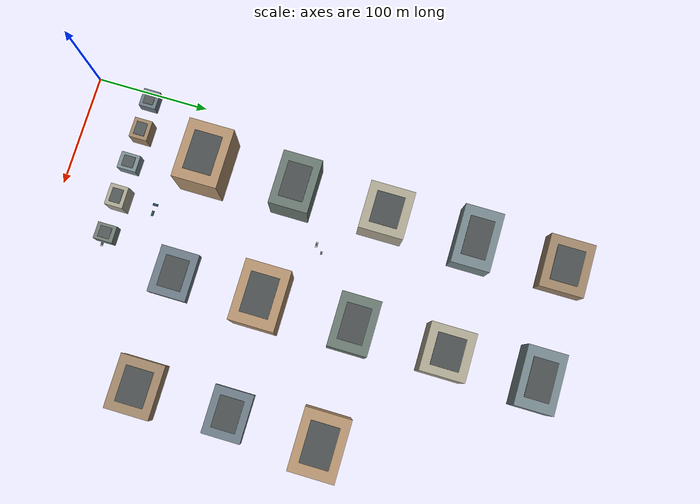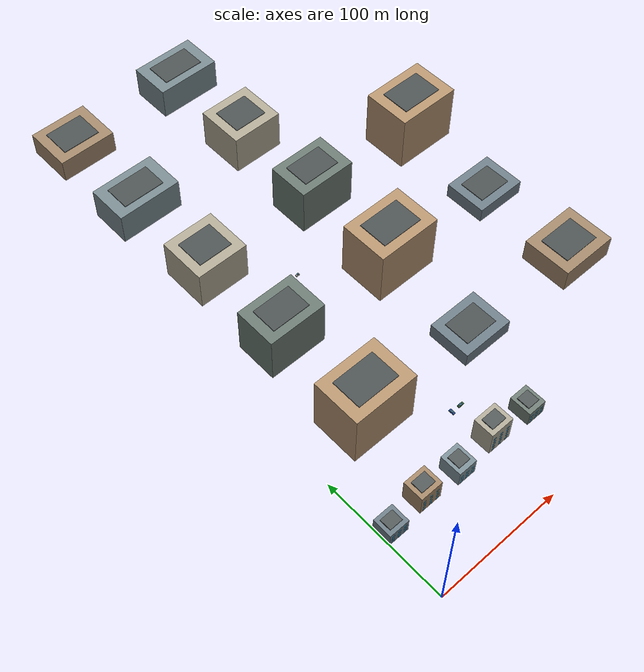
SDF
<sdf version="1.9">
 <world name="smart_city">
  <model name="city_block_01">
   <static>true</static>
   <pose>8 52 0 0 0 0</pose>
   <link name="building">
    <visual name="facade">
     <pose>0 0 6.0 0 0 0</pose>
     <geometry><box><size>16 15 12</size></box></geometry>
     <material><ambient>0.42 0.48 0.52 1</ambient><diffuse>0.42 0.48 0.52 1</diffuse></material>
    </visual>
    <visual name="window_0_-512">
     <pose>-5.12 -7.525 2.00 0 0 0</pose>
     <geometry><box><size>2.2 0.08 1.7</size></box></geometry>
     <material>
      <ambient>0.22 0.60 0.76 1</ambient>
      <diffuse>0.22 0.60 0.76 1</diffuse>
      <specular>0.35 0.35 0.35 1</specular>
     </material>
    </visual>
    <visual name="window_0_0">
     <pose>0.00 -7.525 2.00 0 0 0</pose>
     <geometry><box><size>2.2 0.08 1.7</size></box></geometry>
     <material>
      <ambient>0.22 0.60 0.76 1</ambient>
      <diffuse>0.22 0.60 0.76 1</diffuse>
      <specular>0.35 0.35 0.35 1</specular>
     </material>
    </visual>
    <visual name="window_0_512">
     <pose>5.12 -7.525 2.00 0 0 0</pose>
     <geometry><box><size>2.2 0.08 1.7</size></box></geometry>
     <material>
      <ambient>0.22 0.60 0.76 1</ambient>
      <diffuse>0.22 0.60 0.76 1</diffuse>
      <specular>0.35 0.35 0.35 1</specular>
     </material>
    </visual>
    <visual name="window_1_-512">
     <pose>-5.12 -7.525 5.20 0 0 0</pose>
     <geometry><box><size>2.2 0.08 1.7</size></box></geometry>
     <material>
      <ambient>0.22 0.60 0.76 1</ambient>
      <diffuse>0.22 0.60 0.76 1</diffuse>
      <specular>0.35 0.35 0.35 1</specular>
     </material>
    </visual>
    <visual name="window_1_0">
     <pose>0.00 -7.525 5.20 0 0 0</pose>
     <geometry><box><size>2.2 0.08 1.7</size></box></geometry>
     <material>
      <ambient>0.22 0.60 0.76 1</ambient>
      <diffuse>0.22 0.60 0.76 1</diffuse>
      <specular>0.35 0.35 0.35 1</specular>
     </material>
    </visual>
    <visual name="window_1_512">
     <pose>5.12 -7.525 5.20 0 0 0</pose>
     <geometry><box><size>2.2 0.08 1.7</size></box></geometry>
     <material>
      <ambient>0.22 0.60 0.76 1</ambient>
      <diffuse>0.22 0.60 0.76 1</diffuse>
      <specular>0.35 0.35 0.35 1</specular>
     </material>
    </visual>
    <visual name="window_2_-512">
     <pose>-5.12 -7.525 8.40 0 0 0</pose>
     <geometry><box><size>2.2 0.08 1.7</size></box></geometry>
     <material>
      <ambient>0.22 0.60 0.76 1</ambient>
      <diffuse>0.22 0.60 0.76 1</diffuse>
      <specular>0.35 0.35 0.35 1</specular>
     </material>
    </visual>
    <visual name="window_2_0">
     <pose>0.00 -7.525 8.40 0 0 0</pose>
     <geometry><box><size>2.2 0.08 1.7</size></box></geometry>
     <material>
      <ambient>0.22 0.60 0.76 1</ambient>
      <diffuse>0.22 0.60 0.76 1</diffuse>
      <specular>0.35 0.35 0.35 1</specular>
     </material>
    </visual>
    <visual name="window_2_512">
     <pose>5.12 -7.525 8.40 0 0 0</pose>
     <geometry><box><size>2.2 0.08 1.7</size></box></geometry>
     <material>
      <ambient>0.22 0.60 0.76 1</ambient>
      <diffuse>0.22 0.60 0.76 1</diffuse>
      <specular>0.35 0.35 0.35 1</specular>
     </material>
    </visual>
    <visual name="roof">
     <pose>0 0 12.4 0 0 0</pose>
     <geometry><box><size>10.4 9.0 0.8</size></box></geometry>
     <material><ambient>0.32 0.34 0.34 1</ambient><diffuse>0.32 0.34 0.34 1</diffuse></material>
    </visual>
   </link>
  </model>
  <model name="city_block_02">
   <static>true</static>
   <pose>38 55 0 0 0 0</pose>
   <link name="building">
    <visual name="facade">
     <pose>0 0 9.0 0 0 0</pose>
     <geometry><box><size>18 16 18</size></box></geometry>
     <material><ambient>0.63 0.52 0.40 1</ambient><diffuse>0.63 0.52 0.40 1</diffuse></material>
    </visual>
    <visual name="window_0_-576">
     <pose>-5.76 -8.025 2.00 0 0 0</pose>
     <geometry><box><size>2.2 0.08 1.7</size></box></geometry>
     <material>
      <ambient>0.25 0.62 0.78 1</ambient>
      <diffuse>0.25 0.62 0.78 1</diffuse>
      <specular>0.35 0.35 0.35 1</specular>
     </material>
    </visual>
    <visual name="window_0_0">
     <pose>0.00 -8.025 2.00 0 0 0</pose>
     <geometry><box><size>2.2 0.08 1.7</size></box></geometry>
     <material>
      <ambient>0.25 0.62 0.78 1</ambient>
      <diffuse>0.25 0.62 0.78 1</diffuse>
      <specular>0.35 0.35 0.35 1</specular>
     </material>
    </visual>
    <visual name="window_0_576">
     <pose>5.76 -8.025 2.00 0 0 0</pose>
     <geometry><box><size>2.2 0.08 1.7</size></box></geometry>
     <material>
      <ambient>0.25 0.62 0.78 1</ambient>
      <diffuse>0.25 0.62 0.78 1</diffuse>
      <specular>0.35 0.35 0.35 1</specular>
     </material>
    </visual>
    <visual name="window_1_-576">
     <pose>-5.76 -8.025 5.20 0 0 0</pose>
     <geometry><box><size>2.2 0.08 1.7</size></box></geometry>
     <material>
      <ambient>0.25 0.62 0.78 1</ambient>
      <diffuse>0.25 0.62 0.78 1</diffuse>
      <specular>0.35 0.35 0.35 1</specular>
     </material>
    </visual>
    <visual name="window_1_0">
     <pose>0.00 -8.025 5.20 0 0 0</pose>
     <geometry><box><size>2.2 0.08 1.7</size></box></geometry>
     <material>
      <ambient>0.25 0.62 0.78 1</ambient>
      <diffuse>0.25 0.62 0.78 1</diffuse>
      <specular>0.35 0.35 0.35 1</specular>
     </material>
    </visual>
    <visual name="window_1_576">
     <pose>5.76 -8.025 5.20 0 0 0</pose>
     <geometry><box><size>2.2 0.08 1.7</size></box></geometry>
     <material>
      <ambient>0.25 0.62 0.78 1</ambient>
      <diffuse>0.25 0.62 0.78 1</diffuse>
      <specular>0.35 0.35 0.35 1</specular>
     </material>
    </visual>
    <visual name="window_2_-576">
     <pose>-5.76 -8.025 8.40 0 0 0</pose>
     <geometry><box><size>2.2 0.08 1.7</size></box></geometry>
     <material>
      <ambient>0.25 0.62 0.78 1</ambient>
      <diffuse>0.25 0.62 0.78 1</diffuse>
      <specular>0.35 0.35 0.35 1</specular>
     </material>
    </visual>
    <visual name="window_2_0">
     <pose>0.00 -8.025 8.40 0 0 0</pose>
     <geometry><box><size>2.2 0.08 1.7</size></box></geometry>
     <material>
      <ambient>0.25 0.62 0.78 1</ambient>
      <diffuse>0.25 0.62 0.78 1</diffuse>
      <specular>0.35 0.35 0.35 1</specular>
     </material>
    </visual>
    <visual name="window_2_576">
     <pose>5.76 -8.025 8.40 0 0 0</pose>
     <geometry><box><size>2.2 0.08 1.7</size></box></geometry>
     <material>
      <ambient>0.25 0.62 0.78 1</ambient>
      <diffuse>0.25 0.62 0.78 1</diffuse>
      <specular>0.35 0.35 0.35 1</specular>
     </material>
    </visual>
    <visual name="window_3_-576">
     <pose>-5.76 -8.025 11.60 0 0 0</pose>
     <geometry><box><size>2.2 0.08 1.7</size></box></geometry>
     <material>
      <ambient>0.25 0.62 0.78 1</ambient>
      <diffuse>0.25 0.62 0.78 1</diffuse>
      <specular>0.35 0.35 0.35 1</specular>
     </material>
    </visual>
    <visual name="window_3_0">
     <pose>0.00 -8.025 11.60 0 0 0</pose>
     <geometry><box><size>2.2 0.08 1.7</size></box></geometry>
     <material>
      <ambient>0.25 0.62 0.78 1</ambient>
      <diffuse>0.25 0.62 0.78 1</diffuse>
      <specular>0.35 0.35 0.35 1</specular>
     </material>
    </visual>
    <visual name="window_3_576">
     <pose>5.76 -8.025 11.60 0 0 0</pose>
     <geometry><box><size>2.2 0.08 1.7</size></box></geometry>
     <material>
      <ambient>0.25 0.62 0.78 1</ambient>
      <diffuse>0.25 0.62 0.78 1</diffuse>
      <specular>0.35 0.35 0.35 1</specular>
     </material>
    </visual>
    <visual name="roof">
     <pose>0 0 18.4 0 0 0</pose>
     <geometry><box><size>11.7 9.6 0.8</size></box></geometry>
     <material><ambient>0.32 0.34 0.34 1</ambient><diffuse>0.32 0.34 0.34 1</diffuse></material>
    </visual>
   </link>
  </model>
  <model name="city_block_03">
   <static>true</static>
   <pose>68 53 0 0 0 0</pose>
   <link name="building">
    <visual name="facade">
     <pose>0 0 7.0 0 0 0</pose>
     <geometry><box><size>15 17 14</size></box></geometry>
     <material><ambient>0.48 0.55 0.58 1</ambient><diffuse>0.48 0.55 0.58 1</diffuse></material>
    </visual>
    <visual name="window_0_-480">
     <pose>-4.80 -8.525 2.00 0 0 0</pose>
     <geometry><box><size>2.2 0.08 1.7</size></box></geometry>
     <material>
      <ambient>0.30 0.68 0.82 1</ambient>
      <diffuse>0.30 0.68 0.82 1</diffuse>
      <specular>0.35 0.35 0.35 1</specular>
     </material>
    </visual>
    <visual name="window_0_0">
     <pose>0.00 -8.525 2.00 0 0 0</pose>
     <geometry><box><size>2.2 0.08 1.7</size></box></geometry>
     <material>
      <ambient>0.30 0.68 0.82 1</ambient>
      <diffuse>0.30 0.68 0.82 1</diffuse>
      <specular>0.35 0.35 0.35 1</specular>
     </material>
    </visual>
    <visual name="window_0_480">
     <pose>4.80 -8.525 2.00 0 0 0</pose>
     <geometry><box><size>2.2 0.08 1.7</size></box></geometry>
     <material>
      <ambient>0.30 0.68 0.82 1</ambient>
      <diffuse>0.30 0.68 0.82 1</diffuse>
      <specular>0.35 0.35 0.35 1</specular>
     </material>
    </visual>
    <visual name="window_1_-480">
     <pose>-4.80 -8.525 5.20 0 0 0</pose>
     <geometry><box><size>2.2 0.08 1.7</size></box></geometry>
     <material>
      <ambient>0.30 0.68 0.82 1</ambient>
      <diffuse>0.30 0.68 0.82 1</diffuse>
      <specular>0.35 0.35 0.35 1</specular>
     </material>
    </visual>
    <visual name="window_1_0">
     <pose>0.00 -8.525 5.20 0 0 0</pose>
     <geometry><box><size>2.2 0.08 1.7</size></box></geometry>
     <material>
      <ambient>0.30 0.68 0.82 1</ambient>
      <diffuse>0.30 0.68 0.82 1</diffuse>
      <specular>0.35 0.35 0.35 1</specular>
     </material>
    </visual>
    <visual name="window_1_480">
     <pose>4.80 -8.525 5.20 0 0 0</pose>
     <geometry><box><size>2.2 0.08 1.7</size></box></geometry>
     <material>
      <ambient>0.30 0.68 0.82 1</ambient>
      <diffuse>0.30 0.68 0.82 1</diffuse>
      <specular>0.35 0.35 0.35 1</specular>
     </material>
    </visual>
    <visual name="window_2_-480">
     <pose>-4.80 -8.525 8.40 0 0 0</pose>
     <geometry><box><size>2.2 0.08 1.7</size></box></geometry>
     <material>
      <ambient>0.30 0.68 0.82 1</ambient>
      <diffuse>0.30 0.68 0.82 1</diffuse>
      <specular>0.35 0.35 0.35 1</specular>
     </material>
    </visual>
    <visual name="window_2_0">
     <pose>0.00 -8.525 8.40 0 0 0</pose>
     <geometry><box><size>2.2 0.08 1.7</size></box></geometry>
     <material>
      <ambient>0.30 0.68 0.82 1</ambient>
      <diffuse>0.30 0.68 0.82 1</diffuse>
      <specular>0.35 0.35 0.35 1</specular>
     </material>
    </visual>
    <visual name="window_2_480">
     <pose>4.80 -8.525 8.40 0 0 0</pose>
     <geometry><box><size>2.2 0.08 1.7</size></box></geometry>
     <material>
      <ambient>0.30 0.68 0.82 1</ambient>
      <diffuse>0.30 0.68 0.82 1</diffuse>
      <specular>0.35 0.35 0.35 1</specular>
     </material>
    </visual>
    <visual name="roof">
     <pose>0 0 14.4 0 0 0</pose>
     <geometry><box><size>9.8 10.2 0.8</size></box></geometry>
     <material><ambient>0.32 0.34 0.34 1</ambient><diffuse>0.32 0.34 0.34 1</diffuse></material>
    </visual>
   </link>
  </model>
  <model name="city_block_04">
   <static>true</static>
   <pose>101 55 0 0 0 0</pose>
   <link name="building">
    <visual name="facade">
     <pose>0 0 11.0 0 0 0</pose>
     <geometry><box><size>19 16 22</size></box></geometry>
     <material><ambient>0.67 0.65 0.58 1</ambient><diffuse>0.67 0.65 0.58 1</diffuse></material>
    </visual>
    <visual name="window_0_-608">
     <pose>-6.08 -8.025 2.00 0 0 0</pose>
     <geometry><box><size>2.2 0.08 1.7</size></box></geometry>
     <material>
      <ambient>0.24 0.55 0.72 1</ambient>
      <diffuse>0.24 0.55 0.72 1</diffuse>
      <specular>0.35 0.35 0.35 1</specular>
     </material>
    </visual>
    <visual name="window_0_0">
     <pose>0.00 -8.025 2.00 0 0 0</pose>
     <geometry><box><size>2.2 0.08 1.7</size></box></geometry>
     <material>
      <ambient>0.24 0.55 0.72 1</ambient>
      <diffuse>0.24 0.55 0.72 1</diffuse>
      <specular>0.35 0.35 0.35 1</specular>
     </material>
    </visual>
    <visual name="window_0_608">
     <pose>6.08 -8.025 2.00 0 0 0</pose>
     <geometry><box><size>2.2 0.08 1.7</size></box></geometry>
     <material>
      <ambient>0.24 0.55 0.72 1</ambient>
      <diffuse>0.24 0.55 0.72 1</diffuse>
      <specular>0.35 0.35 0.35 1</specular>
     </material>
    </visual>
    <visual name="window_1_-608">
     <pose>-6.08 -8.025 5.20 0 0 0</pose>
     <geometry><box><size>2.2 0.08 1.7</size></box></geometry>
     <material>
      <ambient>0.24 0.55 0.72 1</ambient>
      <diffuse>0.24 0.55 0.72 1</diffuse>
      <specular>0.35 0.35 0.35 1</specular>
     </material>
    </visual>
    <visual name="window_1_0">
     <pose>0.00 -8.025 5.20 0 0 0</pose>
     <geometry><box><size>2.2 0.08 1.7</size></box></geometry>
     <material>
      <ambient>0.24 0.55 0.72 1</ambient>
      <diffuse>0.24 0.55 0.72 1</diffuse>
      <specular>0.35 0.35 0.35 1</specular>
     </material>
    </visual>
    <visual name="window_1_608">
     <pose>6.08 -8.025 5.20 0 0 0</pose>
     <geometry><box><size>2.2 0.08 1.7</size></box></geometry>
     <material>
      <ambient>0.24 0.55 0.72 1</ambient>
      <diffuse>0.24 0.55 0.72 1</diffuse>
      <specular>0.35 0.35 0.35 1</specular>
     </material>
    </visual>
    <visual name="window_2_-608">
     <pose>-6.08 -8.025 8.40 0 0 0</pose>
     <geometry><box><size>2.2 0.08 1.7</size></box></geometry>
     <material>
      <ambient>0.24 0.55 0.72 1</ambient>
      <diffuse>0.24 0.55 0.72 1</diffuse>
      <specular>0.35 0.35 0.35 1</specular>
     </material>
    </visual>
    <visual name="window_2_0">
     <pose>0.00 -8.025 8.40 0 0 0</pose>
     <geometry><box><size>2.2 0.08 1.7</size></box></geometry>
     <material>
      <ambient>0.24 0.55 0.72 1</ambient>
      <diffuse>0.24 0.55 0.72 1</diffuse>
      <specular>0.35 0.35 0.35 1</specular>
     </material>
    </visual>
    <visual name="window_2_608">
     <pose>6.08 -8.025 8.40 0 0 0</pose>
     <geometry><box><size>2.2 0.08 1.7</size></box></geometry>
     <material>
      <ambient>0.24 0.55 0.72 1</ambient>
      <diffuse>0.24 0.55 0.72 1</diffuse>
      <specular>0.35 0.35 0.35 1</specular>
     </material>
    </visual>
    <visual name="window_3_-608">
     <pose>-6.08 -8.025 11.60 0 0 0</pose>
     <geometry><box><size>2.2 0.08 1.7</size></box></geometry>
     <material>
      <ambient>0.24 0.55 0.72 1</ambient>
      <diffuse>0.24 0.55 0.72 1</diffuse>
      <specular>0.35 0.35 0.35 1</specular>
     </material>
    </visual>
    <visual name="window_3_0">
     <pose>0.00 -8.025 11.60 0 0 0</pose>
     <geometry><box><size>2.2 0.08 1.7</size></box></geometry>
     <material>
      <ambient>0.24 0.55 0.72 1</ambient>
      <diffuse>0.24 0.55 0.72 1</diffuse>
      <specular>0.35 0.35 0.35 1</specular>
     </material>
    </visual>
    <visual name="window_3_608">
     <pose>6.08 -8.025 11.60 0 0 0</pose>
     <geometry><box><size>2.2 0.08 1.7</size></box></geometry>
     <material>
      <ambient>0.24 0.55 0.72 1</ambient>
      <diffuse>0.24 0.55 0.72 1</diffuse>
      <specular>0.35 0.35 0.35 1</specular>
     </material>
    </visual>
    <visual name="window_4_-608">
     <pose>-6.08 -8.025 14.80 0 0 0</pose>
     <geometry><box><size>2.2 0.08 1.7</size></box></geometry>
     <material>
      <ambient>0.24 0.55 0.72 1</ambient>
      <diffuse>0.24 0.55 0.72 1</diffuse>
      <specular>0.35 0.35 0.35 1</specular>
     </material>
    </visual>
    <visual name="window_4_0">
     <pose>0.00 -8.025 14.80 0 0 0</pose>
     <geometry><box><size>2.2 0.08 1.7</size></box></geometry>
     <material>
      <ambient>0.24 0.55 0.72 1</ambient>
      <diffuse>0.24 0.55 0.72 1</diffuse>
      <specular>0.35 0.35 0.35 1</specular>
     </material>
    </visual>
    <visual name="window_4_608">
     <pose>6.08 -8.025 14.80 0 0 0</pose>
     <geometry><box><size>2.2 0.08 1.7</size></box></geometry>
     <material>
      <ambient>0.24 0.55 0.72 1</ambient>
      <diffuse>0.24 0.55 0.72 1</diffuse>
      <specular>0.35 0.35 0.35 1</specular>
     </material>
    </visual>
    <visual name="roof">
     <pose>0 0 22.4 0 0 0</pose>
     <geometry><box><size>12.3 9.6 0.8</size></box></geometry>
     <material><ambient>0.32 0.34 0.34 1</ambient><diffuse>0.32 0.34 0.34 1</diffuse></material>
    </visual>
   </link>
  </model>
  <model name="city_block_05">
   <static>true</static>
   <pose>133 53 0 0 0 0</pose>
   <link name="building">
    <visual name="facade">
     <pose>0 0 6.5 0 0 0</pose>
     <geometry><box><size>15 17 13</size></box></geometry>
     <material><ambient>0.43 0.48 0.45 1</ambient><diffuse>0.43 0.48 0.45 1</diffuse></material>
    </visual>
    <visual name="window_0_-480">
     <pose>-4.80 -8.525 2.00 0 0 0</pose>
     <geometry><box><size>2.2 0.08 1.7</size></box></geometry>
     <material>
      <ambient>0.31 0.64 0.78 1</ambient>
      <diffuse>0.31 0.64 0.78 1</diffuse>
      <specular>0.35 0.35 0.35 1</specular>
     </material>
    </visual>
    <visual name="window_0_0">
     <pose>0.00 -8.525 2.00 0 0 0</pose>
     <geometry><box><size>2.2 0.08 1.7</size></box></geometry>
     <material>
      <ambient>0.31 0.64 0.78 1</ambient>
      <diffuse>0.31 0.64 0.78 1</diffuse>
      <specular>0.35 0.35 0.35 1</specular>
     </material>
    </visual>
    <visual name="window_0_480">
     <pose>4.80 -8.525 2.00 0 0 0</pose>
     <geometry><box><size>2.2 0.08 1.7</size></box></geometry>
     <material>
      <ambient>0.31 0.64 0.78 1</ambient>
      <diffuse>0.31 0.64 0.78 1</diffuse>
      <specular>0.35 0.35 0.35 1</specular>
     </material>
    </visual>
    <visual name="window_1_-480">
     <pose>-4.80 -8.525 5.20 0 0 0</pose>
     <geometry><box><size>2.2 0.08 1.7</size></box></geometry>
     <material>
      <ambient>0.31 0.64 0.78 1</ambient>
      <diffuse>0.31 0.64 0.78 1</diffuse>
      <specular>0.35 0.35 0.35 1</specular>
     </material>
    </visual>
    <visual name="window_1_0">
     <pose>0.00 -8.525 5.20 0 0 0</pose>
     <geometry><box><size>2.2 0.08 1.7</size></box></geometry>
     <material>
      <ambient>0.31 0.64 0.78 1</ambient>
      <diffuse>0.31 0.64 0.78 1</diffuse>
      <specular>0.35 0.35 0.35 1</specular>
     </material>
    </visual>
    <visual name="window_1_480">
     <pose>4.80 -8.525 5.20 0 0 0</pose>
     <geometry><box><size>2.2 0.08 1.7</size></box></geometry>
     <material>
      <ambient>0.31 0.64 0.78 1</ambient>
      <diffuse>0.31 0.64 0.78 1</diffuse>
      <specular>0.35 0.35 0.35 1</specular>
     </material>
    </visual>
    <visual name="window_2_-480">
     <pose>-4.80 -8.525 8.40 0 0 0</pose>
     <geometry><box><size>2.2 0.08 1.7</size></box></geometry>
     <material>
      <ambient>0.31 0.64 0.78 1</ambient>
      <diffuse>0.31 0.64 0.78 1</diffuse>
      <specular>0.35 0.35 0.35 1</specular>
     </material>
    </visual>
    <visual name="window_2_0">
     <pose>0.00 -8.525 8.40 0 0 0</pose>
     <geometry><box><size>2.2 0.08 1.7</size></box></geometry>
     <material>
      <ambient>0.31 0.64 0.78 1</ambient>
      <diffuse>0.31 0.64 0.78 1</diffuse>
      <specular>0.35 0.35 0.35 1</specular>
     </material>
    </visual>
    <visual name="window_2_480">
     <pose>4.80 -8.525 8.40 0 0 0</pose>
     <geometry><box><size>2.2 0.08 1.7</size></box></geometry>
     <material>
      <ambient>0.31 0.64 0.78 1</ambient>
      <diffuse>0.31 0.64 0.78 1</diffuse>
      <specular>0.35 0.35 0.35 1</specular>
     </material>
    </visual>
    <visual name="roof">
     <pose>0 0 13.4 0 0 0</pose>
     <geometry><box><size>9.8 10.2 0.8</size></box></geometry>
     <material><ambient>0.32 0.34 0.34 1</ambient><diffuse>0.32 0.34 0.34 1</diffuse></material>
    </visual>
   </link>
  </model>
  <model name="chennai_block_059">
   <static>true</static>
   <pose>50 120 0 0 0 0</pose>
   <link name="building">
    <collision name="structure">
     <pose>0 0 23.5 0 0 0</pose>
     <geometry><box><size>52 39 47</size></box></geometry>
    </collision>
    <visual name="facade">
     <pose>0 0 23.5 0 0 0</pose>
     <geometry><box><size>52 39 47</size></box></geometry>
     <material><ambient>0.70 0.57 0.43 1</ambient><diffuse>0.70 0.57 0.43 1</diffuse></material>
    </visual>
    <visual name="roof">
     <pose>0 0 47.3 0 0 0</pose>
     <geometry><box><size>34.3 24.2 0.6</size></box></geometry>
     <material><ambient>0.29 0.31 0.31 1</ambient><diffuse>0.29 0.31 0.31 1</diffuse></material>
    </visual>
   </link>
  </model>
  <model name="chennai_block_060">
   <static>true</static>
   <pose>150 120 0 0 0 0</pose>
   <link name="building">
    <collision name="structure">
     <pose>0 0 6.0 0 0 0</pose>
     <geometry><box><size>42 34 12</size></box></geometry>
    </collision>
    <visual name="facade">
     <pose>0 0 6.0 0 0 0</pose>
     <geometry><box><size>42 34 12</size></box></geometry>
     <material><ambient>0.42 0.48 0.52 1</ambient><diffuse>0.42 0.48 0.52 1</diffuse></material>
    </visual>
    <visual name="roof">
     <pose>0 0 12.3 0 0 0</pose>
     <geometry><box><size>27.7 21.1 0.6</size></box></geometry>
     <material><ambient>0.29 0.31 0.31 1</ambient><diffuse>0.29 0.31 0.31 1</diffuse></material>
    </visual>
   </link>
  </model>
  <model name="chennai_block_061">
   <static>true</static>
   <pose>250 120 0 0 0 0</pose>
   <link name="building">
    <collision name="structure">
     <pose>0 0 9.5 0 0 0</pose>
     <geometry><box><size>47 39 19</size></box></geometry>
    </collision>
    <visual name="facade">
     <pose>0 0 9.5 0 0 0</pose>
     <geometry><box><size>47 39 19</size></box></geometry>
     <material><ambient>0.62 0.52 0.41 1</ambient><diffuse>0.62 0.52 0.41 1</diffuse></material>
    </visual>
    <visual name="roof">
     <pose>0 0 19.3 0 0 0</pose>
     <geometry><box><size>31.0 24.2 0.6</size></box></geometry>
     <material><ambient>0.29 0.31 0.31 1</ambient><diffuse>0.29 0.31 0.31 1</diffuse></material>
    </visual>
   </link>
  </model>
  <model name="chennai_block_070">
   <static>true</static>
   <pose>50 200 0 0 0 0</pose>
   <link name="building">
    <collision name="structure">
     <pose>0 0 20.0 0 0 0</pose>
     <geometry><box><size>47 34 40</size></box></geometry>
    </collision>
    <visual name="facade">
     <pose>0 0 20.0 0 0 0</pose>
     <geometry><box><size>47 34 40</size></box></geometry>
     <material><ambient>0.41 0.47 0.44 1</ambient><diffuse>0.41 0.47 0.44 1</diffuse></material>
    </visual>
    <visual name="roof">
     <pose>0 0 40.3 0 0 0</pose>
     <geometry><box><size>31.0 21.1 0.6</size></box></geometry>
     <material><ambient>0.29 0.31 0.31 1</ambient><diffuse>0.29 0.31 0.31 1</diffuse></material>
    </visual>
   </link>
  </model>
  <model name="chennai_block_071">
   <static>true</static>
   <pose>150 200 0 0 0 0</pose>
   <link name="building">
    <collision name="structure">
     <pose>0 0 23.5 0 0 0</pose>
     <geometry><box><size>52 39 47</size></box></geometry>
    </collision>
    <visual name="facade">
     <pose>0 0 23.5 0 0 0</pose>
     <geometry><box><size>52 39 47</size></box></geometry>
     <material><ambient>0.70 0.57 0.43 1</ambient><diffuse>0.70 0.57 0.43 1</diffuse></material>
    </visual>
    <visual name="roof">
     <pose>0 0 47.3 0 0 0</pose>
     <geometry><box><size>34.3 24.2 0.6</size></box></geometry>
     <material><ambient>0.29 0.31 0.31 1</ambient><diffuse>0.29 0.31 0.31 1</diffuse></material>
    </visual>
   </link>
  </model>
  <model name="chennai_block_072">
   <static>true</static>
   <pose>250 200 0 0 0 0</pose>
   <link name="building">
    <collision name="structure">
     <pose>0 0 6.0 0 0 0</pose>
     <geometry><box><size>42 34 12</size></box></geometry>
    </collision>
    <visual name="facade">
     <pose>0 0 6.0 0 0 0</pose>
     <geometry><box><size>42 34 12</size></box></geometry>
     <material><ambient>0.42 0.48 0.52 1</ambient><diffuse>0.42 0.48 0.52 1</diffuse></material>
    </visual>
    <visual name="roof">
     <pose>0 0 12.3 0 0 0</pose>
     <geometry><box><size>27.7 21.1 0.6</size></box></geometry>
     <material><ambient>0.29 0.31 0.31 1</ambient><diffuse>0.29 0.31 0.31 1</diffuse></material>
    </visual>
   </link>
  </model>
  <model name="chennai_block_081">
   <static>true</static>
   <pose>50 280 0 0 0 0</pose>
   <link name="building">
    <collision name="structure">
     <pose>0 0 16.5 0 0 0</pose>
     <geometry><box><size>42 39 33</size></box></geometry>
    </collision>
    <visual name="facade">
     <pose>0 0 16.5 0 0 0</pose>
     <geometry><box><size>42 39 33</size></box></geometry>
     <material><ambient>0.68 0.65 0.57 1</ambient><diffuse>0.68 0.65 0.57 1</diffuse></material>
    </visual>
    <visual name="roof">
     <pose>0 0 33.3 0 0 0</pose>
     <geometry><box><size>27.7 24.2 0.6</size></box></geometry>
     <material><ambient>0.29 0.31 0.31 1</ambient><diffuse>0.29 0.31 0.31 1</diffuse></material>
    </visual>
   </link>
  </model>
  <model name="chennai_block_082">
   <static>true</static>
   <pose>150 280 0 0 0 0</pose>
   <link name="building">
    <collision name="structure">
     <pose>0 0 20.0 0 0 0</pose>
     <geometry><box><size>47 34 40</size></box></geometry>
    </collision>
    <visual name="facade">
     <pose>0 0 20.0 0 0 0</pose>
     <geometry><box><size>47 34 40</size></box></geometry>
     <material><ambient>0.41 0.47 0.44 1</ambient><diffuse>0.41 0.47 0.44 1</diffuse></material>
    </visual>
    <visual name="roof">
     <pose>0 0 40.3 0 0 0</pose>
     <geometry><box><size>31.0 21.1 0.6</size></box></geometry>
     <material><ambient>0.29 0.31 0.31 1</ambient><diffuse>0.29 0.31 0.31 1</diffuse></material>
    </visual>
   </link>
  </model>
  <model name="chennai_block_083">
   <static>true</static>
   <pose>250 280 0 0 0 0</pose>
   <link name="building">
    <collision name="structure">
     <pose>0 0 23.5 0 0 0</pose>
     <geometry><box><size>52 39 47</size></box></geometry>
    </collision>
    <visual name="facade">
     <pose>0 0 23.5 0 0 0</pose>
     <geometry><box><size>52 39 47</size></box></geometry>
     <material><ambient>0.70 0.57 0.43 1</ambient><diffuse>0.70 0.57 0.43 1</diffuse></material>
    </visual>
    <visual name="roof">
     <pose>0 0 47.3 0 0 0</pose>
     <geometry><box><size>34.3 24.2 0.6</size></box></geometry>
     <material><ambient>0.29 0.31 0.31 1</ambient><diffuse>0.29 0.31 0.31 1</diffuse></material>
    </visual>
   </link>
  </model>
  <model name="chennai_block_092">
   <static>true</static>
   <pose>50 360 0 0 0 0</pose>
   <link name="building">
    <collision name="structure">
     <pose>0 0 13.0 0 0 0</pose>
     <geometry><box><size>52 34 26</size></box></geometry>
    </collision>
    <visual name="facade">
     <pose>0 0 13.0 0 0 0</pose>
     <geometry><box><size>52 34 26</size></box></geometry>
     <material><ambient>0.46 0.53 0.55 1</ambient><diffuse>0.46 0.53 0.55 1</diffuse></material>
    </visual>
    <visual name="roof">
     <pose>0 0 26.3 0 0 0</pose>
     <geometry><box><size>34.3 21.1 0.6</size></box></geometry>
     <material><ambient>0.29 0.31 0.31 1</ambient><diffuse>0.29 0.31 0.31 1</diffuse></material>
    </visual>
   </link>
  </model>
  <model name="chennai_block_093">
   <static>true</static>
   <pose>150 360 0 0 0 0</pose>
   <link name="building">
    <collision name="structure">
     <pose>0 0 16.5 0 0 0</pose>
     <geometry><box><size>42 39 33</size></box></geometry>
    </collision>
    <visual name="facade">
     <pose>0 0 16.5 0 0 0</pose>
     <geometry><box><size>42 39 33</size></box></geometry>
     <material><ambient>0.68 0.65 0.57 1</ambient><diffuse>0.68 0.65 0.57 1</diffuse></material>
    </visual>
    <visual name="roof">
     <pose>0 0 33.3 0 0 0</pose>
     <geometry><box><size>27.7 24.2 0.6</size></box></geometry>
     <material><ambient>0.29 0.31 0.31 1</ambient><diffuse>0.29 0.31 0.31 1</diffuse></material>
    </visual>
   </link>
  </model>
  <model name="chennai_block_103">
   <static>true</static>
   <pose>50 440 0 0 0 0</pose>
   <link name="building">
    <collision name="structure">
     <pose>0 0 9.5 0 0 0</pose>
     <geometry><box><size>47 39 19</size></box></geometry>
    </collision>
    <visual name="facade">
     <pose>0 0 9.5 0 0 0</pose>
     <geometry><box><size>47 39 19</size></box></geometry>
     <material><ambient>0.62 0.52 0.41 1</ambient><diffuse>0.62 0.52 0.41 1</diffuse></material>
    </visual>
    <visual name="roof">
     <pose>0 0 19.3 0 0 0</pose>
     <geometry><box><size>31.0 24.2 0.6</size></box></geometry>
     <material><ambient>0.29 0.31 0.31 1</ambient><diffuse>0.29 0.31 0.31 1</diffuse></material>
    </visual>
   </link>
  </model>
  <model name="chennai_block_104">
   <static>true</static>
   <pose>150 440 0 0 0 0</pose>
   <link name="building">
    <collision name="structure">
     <pose>0 0 13.0 0 0 0</pose>
     <geometry><box><size>52 34 26</size></box></geometry>
    </collision>
    <visual name="facade">
     <pose>0 0 13.0 0 0 0</pose>
     <geometry><box><size>52 34 26</size></box></geometry>
     <material><ambient>0.46 0.53 0.55 1</ambient><diffuse>0.46 0.53 0.55 1</diffuse></material>
    </visual>
    <visual name="roof">
     <pose>0 0 26.3 0 0 0</pose>
     <geometry><box><size>34.3 21.1 0.6</size></box></geometry>
     <material><ambient>0.29 0.31 0.31 1</ambient><diffuse>0.29 0.31 0.31 1</diffuse></material>
    </visual>
   </link>
  </model>
  <model name="chennai_traffic_14">
   <static>false</static>
   <pose>96 84 0 0 0 1.5708</pose>
   <link name="base_link">
    <pose>0 0 0.72 0 0 0</pose>
    <inertial>
     <mass>650</mass>
     <inertia><ixx>487.5</ixx><iyy>715.0</iyy><izz>910.0</izz><ixy>0</ixy><ixz>0</ixz><iyz>0</iyz></inertia>
    </inertial>
    <collision name="body_collision"><geometry><box><size>4.5 1.95 0.96</size></box></geometry></collision>
    <visual name="body">
     <geometry><box><size>4.5 1.95 0.96</size></box></geometry>
     <material><ambient>0.12 0.27 0.55 1</ambient><diffuse>0.12 0.27 0.55 1</diffuse></material>
    </visual>
    <visual name="cabin">
     <pose>-0.15 0 0.63 0 0 0</pose>
     <geometry><box><size>2.16 1.60 0.63</size></box></geometry>
     <material><ambient>0.20 0.35 0.42 1</ambient><diffuse>0.20 0.35 0.42 1</diffuse></material>
    </visual>
    <collision name="wheel_collision_r_r">
     <pose>-1.40 -0.90 -0.38 1.5708 0 0</pose>
     <geometry><cylinder><radius>0.34</radius><length>0.20</length></cylinder></geometry>
     <surface><friction><ode><mu>0.004</mu><mu2>0.004</mu2></ode></friction></surface>
    </collision>
    <visual name="wheel_r_r">
     <pose>-1.40 -0.90 -0.38 1.5708 0 0</pose>
     <geometry><cylinder><radius>0.34</radius><length>0.20</length></cylinder></geometry>
     <material><ambient>0.055 0.055 0.06 1</ambient><diffuse>0.055 0.055 0.06 1</diffuse></material>
    </visual>
    <collision name="wheel_collision_r_l">
     <pose>-1.40 0.90 -0.38 1.5708 0 0</pose>
     <geometry><cylinder><radius>0.34</radius><length>0.20</length></cylinder></geometry>
     <surface><friction><ode><mu>0.004</mu><mu2>0.004</mu2></ode></friction></surface>
    </collision>
    <visual name="wheel_r_l">
     <pose>-1.40 0.90 -0.38 1.5708 0 0</pose>
     <geometry><cylinder><radius>0.34</radius><length>0.20</length></cylinder></geometry>
     <material><ambient>0.055 0.055 0.06 1</ambient><diffuse>0.055 0.055 0.06 1</diffuse></material>
    </visual>
    <collision name="wheel_collision_f_r">
     <pose>1.40 -0.90 -0.38 1.5708 0 0</pose>
     <geometry><cylinder><radius>0.34</radius><length>0.20</length></cylinder></geometry>
     <surface><friction><ode><mu>0.004</mu><mu2>0.004</mu2></ode></friction></surface>
    </collision>
    <visual name="wheel_f_r">
     <pose>1.40 -0.90 -0.38 1.5708 0 0</pose>
     <geometry><cylinder><radius>0.34</radius><length>0.20</length></cylinder></geometry>
     <material><ambient>0.055 0.055 0.06 1</ambient><diffuse>0.055 0.055 0.06 1</diffuse></material>
    </visual>
    <collision name="wheel_collision_f_l">
     <pose>1.40 0.90 -0.38 1.5708 0 0</pose>
     <geometry><cylinder><radius>0.34</radius><length>0.20</length></cylinder></geometry>
     <surface><friction><ode><mu>0.004</mu><mu2>0.004</mu2></ode></friction></surface>
    </collision>
    <visual name="wheel_f_l">
     <pose>1.40 0.90 -0.38 1.5708 0 0</pose>
     <geometry><cylinder><radius>0.34</radius><length>0.20</length></cylinder></geometry>
     <material><ambient>0.055 0.055 0.06 1</ambient><diffuse>0.055 0.055 0.06 1</diffuse></material>
    </visual>
   </link>
   <plugin filename="gz-sim-trajectory-follower-system" name="gz::sim::systems::TrajectoryFollower">
    <link_name>base_link</link_name>
    <loop>true</loop>
    <range_tolerance>3.0</range_tolerance>
    <bearing_tolerance>8.0</bearing_tolerance>
    <force>90</force>
    <torque>220</torque>
    <waypoints>
     <waypoint>96 84</waypoint>
     <waypoint>96 236</waypoint>
     <waypoint>-96 236</waypoint>
     <waypoint>-96 84</waypoint>
    </waypoints>
   </plugin>
  </model>
  <model name="chennai_traffic_15">
   <static>false</static>
   <pose>96 236 0 0 0 3.1416</pose>
   <link name="base_link">
    <pose>0 0 0.72 0 0 0</pose>
    <inertial>
     <mass>340</mass>
     <inertia><ixx>255.0</ixx><iyy>374.0</iyy><izz>476.0</izz><ixy>0</ixy><ixz>0</ixz><iyz>0</iyz></inertia>
    </inertial>
    <collision name="body_collision"><geometry><box><size>2.7 1.55 1.10</size></box></geometry></collision>
    <visual name="body">
     <geometry><box><size>2.7 1.55 1.10</size></box></geometry>
     <material><ambient>0.72 0.72 0.68 1</ambient><diffuse>0.72 0.72 0.68 1</diffuse></material>
    </visual>
    <visual name="cabin">
     <pose>-0.15 0 0.72 0 0 0</pose>
     <geometry><box><size>1.296 1.27 0.72</size></box></geometry>
     <material><ambient>0.20 0.35 0.42 1</ambient><diffuse>0.20 0.35 0.42 1</diffuse></material>
    </visual>
    <collision name="wheel_collision_r_r">
     <pose>-0.84 -0.71 -0.38 1.5708 0 0</pose>
     <geometry><cylinder><radius>0.34</radius><length>0.20</length></cylinder></geometry>
     <surface><friction><ode><mu>0.004</mu><mu2>0.004</mu2></ode></friction></surface>
    </collision>
    <visual name="wheel_r_r">
     <pose>-0.84 -0.71 -0.38 1.5708 0 0</pose>
     <geometry><cylinder><radius>0.34</radius><length>0.20</length></cylinder></geometry>
     <material><ambient>0.055 0.055 0.06 1</ambient><diffuse>0.055 0.055 0.06 1</diffuse></material>
    </visual>
    <collision name="wheel_collision_r_l">
     <pose>-0.84 0.71 -0.38 1.5708 0 0</pose>
     <geometry><cylinder><radius>0.34</radius><length>0.20</length></cylinder></geometry>
     <surface><friction><ode><mu>0.004</mu><mu2>0.004</mu2></ode></friction></surface>
    </collision>
    <visual name="wheel_r_l">
     <pose>-0.84 0.71 -0.38 1.5708 0 0</pose>
     <geometry><cylinder><radius>0.34</radius><length>0.20</length></cylinder></geometry>
     <material><ambient>0.055 0.055 0.06 1</ambient><diffuse>0.055 0.055 0.06 1</diffuse></material>
    </visual>
    <collision name="wheel_collision_f_r">
     <pose>0.84 -0.71 -0.38 1.5708 0 0</pose>
     <geometry><cylinder><radius>0.34</radius><length>0.20</length></cylinder></geometry>
     <surface><friction><ode><mu>0.004</mu><mu2>0.004</mu2></ode></friction></surface>
    </collision>
    <visual name="wheel_f_r">
     <pose>0.84 -0.71 -0.38 1.5708 0 0</pose>
     <geometry><cylinder><radius>0.34</radius><length>0.20</length></cylinder></geometry>
     <material><ambient>0.055 0.055 0.06 1</ambient><diffuse>0.055 0.055 0.06 1</diffuse></material>
    </visual>
    <collision name="wheel_collision_f_l">
     <pose>0.84 0.71 -0.38 1.5708 0 0</pose>
     <geometry><cylinder><radius>0.34</radius><length>0.20</length></cylinder></geometry>
     <surface><friction><ode><mu>0.004</mu><mu2>0.004</mu2></ode></friction></surface>
    </collision>
    <visual name="wheel_f_l">
     <pose>0.84 0.71 -0.38 1.5708 0 0</pose>
     <geometry><cylinder><radius>0.34</radius><length>0.20</length></cylinder></geometry>
     <material><ambient>0.055 0.055 0.06 1</ambient><diffuse>0.055 0.055 0.06 1</diffuse></material>
    </visual>
   </link>
   <plugin filename="gz-sim-trajectory-follower-system" name="gz::sim::systems::TrajectoryFollower">
    <link_name>base_link</link_name>
    <loop>true</loop>
    <range_tolerance>3.0</range_tolerance>
    <bearing_tolerance>8.0</bearing_tolerance>
    <force>90</force>
    <torque>220</torque>
    <waypoints>
     <waypoint>96 236</waypoint>
     <waypoint>-96 236</waypoint>
     <waypoint>-96 84</waypoint>
     <waypoint>96 84</waypoint>
    </waypoints>
   </plugin>
  </model>
  <model name="chennai_traffic_16">
   <static>false</static>
   <pose>104 84 0 0 0 0.0000</pose>
   <link name="base_link">
    <pose>0 0 0.72 0 0 0</pose>
    <inertial>
     <mass>650</mass>
     <inertia><ixx>487.5</ixx><iyy>715.0</iyy><izz>910.0</izz><ixy>0</ixy><ixz>0</ixz><iyz>0</iyz></inertia>
    </inertial>
    <collision name="body_collision"><geometry><box><size>4.5 1.95 0.96</size></box></geometry></collision>
    <visual name="body">
     <geometry><box><size>4.5 1.95 0.96</size></box></geometry>
     <material><ambient>0.18 0.37 0.22 1</ambient><diffuse>0.18 0.37 0.22 1</diffuse></material>
    </visual>
    <visual name="cabin">
     <pose>-0.15 0 0.63 0 0 0</pose>
     <geometry><box><size>2.16 1.60 0.63</size></box></geometry>
     <material><ambient>0.20 0.35 0.42 1</ambient><diffuse>0.20 0.35 0.42 1</diffuse></material>
    </visual>
    <collision name="wheel_collision_r_r">
     <pose>-1.40 -0.90 -0.38 1.5708 0 0</pose>
     <geometry><cylinder><radius>0.34</radius><length>0.20</length></cylinder></geometry>
     <surface><friction><ode><mu>0.004</mu><mu2>0.004</mu2></ode></friction></surface>
    </collision>
    <visual name="wheel_r_r">
     <pose>-1.40 -0.90 -0.38 1.5708 0 0</pose>
     <geometry><cylinder><radius>0.34</radius><length>0.20</length></cylinder></geometry>
     <material><ambient>0.055 0.055 0.06 1</ambient><diffuse>0.055 0.055 0.06 1</diffuse></material>
    </visual>
    <collision name="wheel_collision_r_l">
     <pose>-1.40 0.90 -0.38 1.5708 0 0</pose>
     <geometry><cylinder><radius>0.34</radius><length>0.20</length></cylinder></geometry>
     <surface><friction><ode><mu>0.004</mu><mu2>0.004</mu2></ode></friction></surface>
    </collision>
    <visual name="wheel_r_l">
     <pose>-1.40 0.90 -0.38 1.5708 0 0</pose>
     <geometry><cylinder><radius>0.34</radius><length>0.20</length></cylinder></geometry>
     <material><ambient>0.055 0.055 0.06 1</ambient><diffuse>0.055 0.055 0.06 1</diffuse></material>
    </visual>
    <collision name="wheel_collision_f_r">
     <pose>1.40 -0.90 -0.38 1.5708 0 0</pose>
     <geometry><cylinder><radius>0.34</radius><length>0.20</length></cylinder></geometry>
     <surface><friction><ode><mu>0.004</mu><mu2>0.004</mu2></ode></friction></surface>
    </collision>
    <visual name="wheel_f_r">
     <pose>1.40 -0.90 -0.38 1.5708 0 0</pose>
     <geometry><cylinder><radius>0.34</radius><length>0.20</length></cylinder></geometry>
     <material><ambient>0.055 0.055 0.06 1</ambient><diffuse>0.055 0.055 0.06 1</diffuse></material>
    </visual>
    <collision name="wheel_collision_f_l">
     <pose>1.40 0.90 -0.38 1.5708 0 0</pose>
     <geometry><cylinder><radius>0.34</radius><length>0.20</length></cylinder></geometry>
     <surface><friction><ode><mu>0.004</mu><mu2>0.004</mu2></ode></friction></surface>
    </collision>
    <visual name="wheel_f_l">
     <pose>1.40 0.90 -0.38 1.5708 0 0</pose>
     <geometry><cylinder><radius>0.34</radius><length>0.20</length></cylinder></geometry>
     <material><ambient>0.055 0.055 0.06 1</ambient><diffuse>0.055 0.055 0.06 1</diffuse></material>
    </visual>
   </link>
   <plugin filename="gz-sim-trajectory-follower-system" name="gz::sim::systems::TrajectoryFollower">
    <link_name>base_link</link_name>
    <loop>true</loop>
    <range_tolerance>3.0</range_tolerance>
    <bearing_tolerance>8.0</bearing_tolerance>
    <force>90</force>
    <torque>220</torque>
    <waypoints>
     <waypoint>104 84</waypoint>
     <waypoint>296 84</waypoint>
     <waypoint>296 236</waypoint>
     <waypoint>104 236</waypoint>
    </waypoints>
   </plugin>
  </model>
  <model name="chennai_ambulance_07">
   <static>false</static>
   <pose>90 230 0 0 0 3.1416</pose>
   <link name="base_link">
    <pose>0 0 0.72 0 0 0</pose>
    <inertial>
     <mass>650</mass>
     <inertia><ixx>487.5</ixx><iyy>715.0</iyy><izz>910.0</izz><ixy>0</ixy><ixz>0</ixz><iyz>0</iyz></inertia>
    </inertial>
    <collision name="body_collision"><geometry><box><size>4.5 1.95 0.96</size></box></geometry></collision>
    <visual name="body">
     <geometry><box><size>4.5 1.95 0.96</size></box></geometry>
     <material><ambient>0.92 0.92 0.88 1</ambient><diffuse>0.92 0.92 0.88 1</diffuse></material>
    </visual>
    <visual name="cabin">
     <pose>-0.15 0 0.63 0 0 0</pose>
     <geometry><box><size>2.16 1.60 0.63</size></box></geometry>
     <material><ambient>0.20 0.35 0.42 1</ambient><diffuse>0.20 0.35 0.42 1</diffuse></material>
    </visual>
    <visual name="red_emergency_stripe_-1">
     <pose>0 -0.990 -0.06 0 0 0</pose>
     <geometry><box><size>3.42 0.035 0.28</size></box></geometry>
     <material><ambient>0.82 0.025 0.02 1</ambient><diffuse>0.82 0.025 0.02 1</diffuse></material>
    </visual>
    <visual name="red_emergency_stripe_1">
     <pose>0 0.990 -0.06 0 0 0</pose>
     <geometry><box><size>3.42 0.035 0.28</size></box></geometry>
     <material><ambient>0.82 0.025 0.02 1</ambient><diffuse>0.82 0.025 0.02 1</diffuse></material>
    </visual>
    <visual name="blue_lightbar">
     <pose>-0.1 0 0.8 0 0 0</pose>
     <geometry><box><size>0.8 0.3 0.16</size></box></geometry>
     <material>
      <ambient>0.02 0.16 0.95 1</ambient>
      <diffuse>0.02 0.16 0.95 1</diffuse>
      <emissive>0.02 0.08 0.65 1</emissive>
     </material>
    </visual>
    <visual name="roof_cross">
     <pose>1.25 0 0.66 0 0 0</pose>
     <geometry><box><size>0.3 0.92 0.08</size></box></geometry>
     <material><ambient>0.9 0.04 0.02 1</ambient><diffuse>0.9 0.04 0.02 1</diffuse></material>
    </visual>
    <collision name="wheel_collision_r_r">
     <pose>-1.40 -0.90 -0.38 1.5708 0 0</pose>
     <geometry><cylinder><radius>0.34</radius><length>0.20</length></cylinder></geometry>
     <surface><friction><ode><mu>0.004</mu><mu2>0.004</mu2></ode></friction></surface>
    </collision>
    <visual name="wheel_r_r">
     <pose>-1.40 -0.90 -0.38 1.5708 0 0</pose>
     <geometry><cylinder><radius>0.34</radius><length>0.20</length></cylinder></geometry>
     <material><ambient>0.055 0.055 0.06 1</ambient><diffuse>0.055 0.055 0.06 1</diffuse></material>
    </visual>
    <collision name="wheel_collision_r_l">
     <pose>-1.40 0.90 -0.38 1.5708 0 0</pose>
     <geometry><cylinder><radius>0.34</radius><length>0.20</length></cylinder></geometry>
     <surface><friction><ode><mu>0.004</mu><mu2>0.004</mu2></ode></friction></surface>
    </collision>
    <visual name="wheel_r_l">
     <pose>-1.40 0.90 -0.38 1.5708 0 0</pose>
     <geometry><cylinder><radius>0.34</radius><length>0.20</length></cylinder></geometry>
     <material><ambient>0.055 0.055 0.06 1</ambient><diffuse>0.055 0.055 0.06 1</diffuse></material>
    </visual>
    <collision name="wheel_collision_f_r">
     <pose>1.40 -0.90 -0.38 1.5708 0 0</pose>
     <geometry><cylinder><radius>0.34</radius><length>0.20</length></cylinder></geometry>
     <surface><friction><ode><mu>0.004</mu><mu2>0.004</mu2></ode></friction></surface>
    </collision>
    <visual name="wheel_f_r">
     <pose>1.40 -0.90 -0.38 1.5708 0 0</pose>
     <geometry><cylinder><radius>0.34</radius><length>0.20</length></cylinder></geometry>
     <material><ambient>0.055 0.055 0.06 1</ambient><diffuse>0.055 0.055 0.06 1</diffuse></material>
    </visual>
    <collision name="wheel_collision_f_l">
     <pose>1.40 0.90 -0.38 1.5708 0 0</pose>
     <geometry><cylinder><radius>0.34</radius><length>0.20</length></cylinder></geometry>
     <surface><friction><ode><mu>0.004</mu><mu2>0.004</mu2></ode></friction></surface>
    </collision>
    <visual name="wheel_f_l">
     <pose>1.40 0.90 -0.38 1.5708 0 0</pose>
     <geometry><cylinder><radius>0.34</radius><length>0.20</length></cylinder></geometry>
     <material><ambient>0.055 0.055 0.06 1</ambient><diffuse>0.055 0.055 0.06 1</diffuse></material>
    </visual>
   </link>
   <plugin filename="gz-sim-trajectory-follower-system" name="gz::sim::systems::TrajectoryFollower">
    <link_name>base_link</link_name>
    <loop>true</loop>
    <range_tolerance>3.0</range_tolerance>
    <bearing_tolerance>8.0</bearing_tolerance>
    <force>90</force>
    <torque>220</torque>
    <waypoints>
     <waypoint>90 230</waypoint>
     <waypoint>-90 230</waypoint>
     <waypoint>-90 90</waypoint>
     <waypoint>90 90</waypoint>
    </waypoints>
   </plugin>
  </model>
  <model name="parked_ambulance_04">
   <static>true</static>
   <pose>142 50 0 0 0 0.0000</pose>
   <link name="base_link">
    <pose>0 0 0.72 0 0 0</pose>
    <inertial>
     <mass>650</mass>
     <inertia><ixx>487.5</ixx><iyy>715.0</iyy><izz>910.0</izz><ixy>0</ixy><ixz>0</ixz><iyz>0</iyz></inertia>
    </inertial>
    <collision name="body_collision"><geometry><box><size>4.5 1.95 0.96</size></box></geometry></collision>
    <visual name="body">
     <geometry><box><size>4.5 1.95 0.96</size></box></geometry>
     <material><ambient>0.92 0.92 0.88 1</ambient><diffuse>0.92 0.92 0.88 1</diffuse></material>
    </visual>
    <visual name="cabin">
     <pose>-0.15 0 0.63 0 0 0</pose>
     <geometry><box><size>2.16 1.60 0.63</size></box></geometry>
     <material><ambient>0.20 0.35 0.42 1</ambient><diffuse>0.20 0.35 0.42 1</diffuse></material>
    </visual>
    <visual name="red_emergency_stripe_-1">
     <pose>0 -0.990 -0.06 0 0 0</pose>
     <geometry><box><size>3.42 0.035 0.28</size></box></geometry>
     <material><ambient>0.82 0.025 0.02 1</ambient><diffuse>0.82 0.025 0.02 1</diffuse></material>
    </visual>
    <visual name="red_emergency_stripe_1">
     <pose>0 0.990 -0.06 0 0 0</pose>
     <geometry><box><size>3.42 0.035 0.28</size></box></geometry>
     <material><ambient>0.82 0.025 0.02 1</ambient><diffuse>0.82 0.025 0.02 1</diffuse></material>
    </visual>
    <visual name="blue_lightbar">
     <pose>-0.1 0 0.8 0 0 0</pose>
     <geometry><box><size>0.8 0.3 0.16</size></box></geometry>
     <material>
      <ambient>0.02 0.16 0.95 1</ambient>
      <diffuse>0.02 0.16 0.95 1</diffuse>
      <emissive>0.02 0.08 0.65 1</emissive>
     </material>
    </visual>
    <visual name="roof_cross">
     <pose>1.25 0 0.66 0 0 0</pose>
     <geometry><box><size>0.3 0.92 0.08</size></box></geometry>
     <material><ambient>0.9 0.04 0.02 1</ambient><diffuse>0.9 0.04 0.02 1</diffuse></material>
    </visual>
    <collision name="wheel_collision_r_r">
     <pose>-1.40 -0.90 -0.38 1.5708 0 0</pose>
     <geometry><cylinder><radius>0.34</radius><length>0.20</length></cylinder></geometry>
     <surface><friction><ode><mu>0.004</mu><mu2>0.004</mu2></ode></friction></surface>
    </collision>
    <visual name="wheel_r_r">
     <pose>-1.40 -0.90 -0.38 1.5708 0 0</pose>
     <geometry><cylinder><radius>0.34</radius><length>0.20</length></cylinder></geometry>
     <material><ambient>0.055 0.055 0.06 1</ambient><diffuse>0.055 0.055 0.06 1</diffuse></material>
    </visual>
    <collision name="wheel_collision_r_l">
     <pose>-1.40 0.90 -0.38 1.5708 0 0</pose>
     <geometry><cylinder><radius>0.34</radius><length>0.20</length></cylinder></geometry>
     <surface><friction><ode><mu>0.004</mu><mu2>0.004</mu2></ode></friction></surface>
    </collision>
    <visual name="wheel_r_l">
     <pose>-1.40 0.90 -0.38 1.5708 0 0</pose>
     <geometry><cylinder><radius>0.34</radius><length>0.20</length></cylinder></geometry>
     <material><ambient>0.055 0.055 0.06 1</ambient><diffuse>0.055 0.055 0.06 1</diffuse></material>
    </visual>
    <collision name="wheel_collision_f_r">
     <pose>1.40 -0.90 -0.38 1.5708 0 0</pose>
     <geometry><cylinder><radius>0.34</radius><length>0.20</length></cylinder></geometry>
     <surface><friction><ode><mu>0.004</mu><mu2>0.004</mu2></ode></friction></surface>
    </collision>
    <visual name="wheel_f_r">
     <pose>1.40 -0.90 -0.38 1.5708 0 0</pose>
     <geometry><cylinder><radius>0.34</radius><length>0.20</length></cylinder></geometry>
     <material><ambient>0.055 0.055 0.06 1</ambient><diffuse>0.055 0.055 0.06 1</diffuse></material>
    </visual>
    <collision name="wheel_collision_f_l">
     <pose>1.40 0.90 -0.38 1.5708 0 0</pose>
     <geometry><cylinder><radius>0.34</radius><length>0.20</length></cylinder></geometry>
     <surface><friction><ode><mu>0.004</mu><mu2>0.004</mu2></ode></friction></surface>
    </collision>
    <visual name="wheel_f_l">
     <pose>1.40 0.90 -0.38 1.5708 0 0</pose>
     <geometry><cylinder><radius>0.34</radius><length>0.20</length></cylinder></geometry>
     <material><ambient>0.055 0.055 0.06 1</ambient><diffuse>0.055 0.055 0.06 1</diffuse></material>
    </visual>
   </link>
  </model>
 </world>
</sdf>
